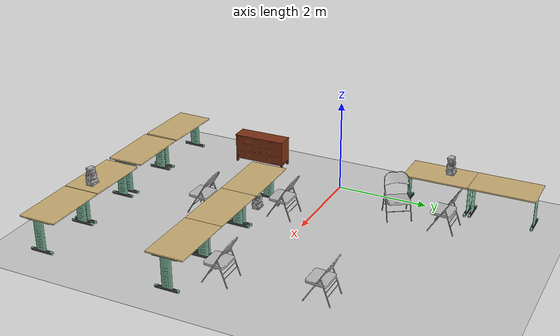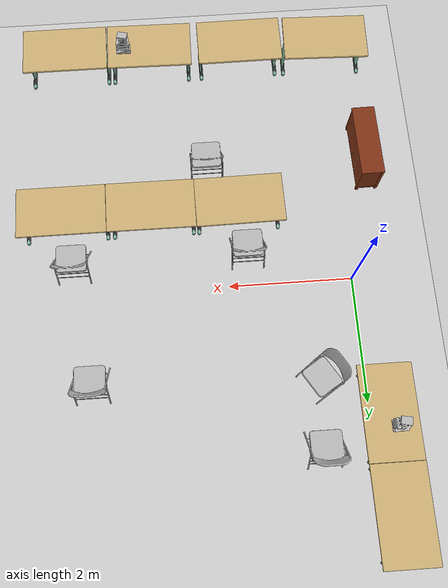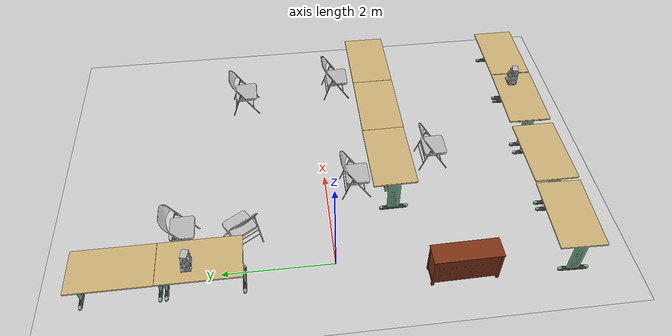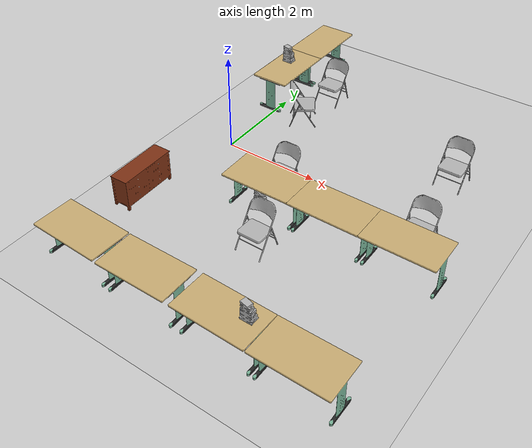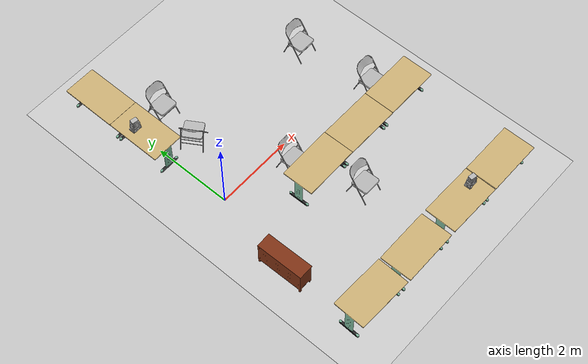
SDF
<sdf version="1.6">
 <world name="default">
  <light name="sun" type="directional">
   <pose>0 0 10 0 -0 0</pose>
   <diffuse>0.8 0.8 0.8 1</diffuse>
   <specular>0.2 0.2 0.2 1</specular>
   <attenuation>
    <range>1000</range>
    <constant>0.9</constant>
    <linear>0.01</linear>
    <quadratic>0.001</quadratic>
   </attenuation>
   <direction>-0.5 0.1 -0.9</direction>
  </light>
  <model name="ground_plane">
   <static>1</static>
   <link name="link">
    <collision name="collision">
     <geometry><plane><normal>0 0 1</normal><size>100 100</size></plane></geometry>
     <surface><friction><ode><mu>100</mu><mu2>50</mu2></ode></friction></surface>
    </collision>
    <visual name="visual">
     <cast_shadows>0</cast_shadows>
     <geometry><plane><normal>0 0 1</normal><size>100 100</size></plane></geometry>
     <material>
      <script><uri>file://media/materials/scripts/gazebo.material</uri><name>Gazebo/Grey</name></script>
     </material>
    </visual>
   </link>
  </model>
  <gravity>0 0 -9.8</gravity>
  <magnetic_field>6e-06 2.3e-05 -4.2e-05</magnetic_field>
  <atmosphere type="adiabatic"/>
  <physics name="default_physics" default="0" type="ode">
   <max_step_size>0.001</max_step_size>
   <real_time_factor>1</real_time_factor>
   <real_time_update_rate>1000</real_time_update_rate>
  </physics>
  <scene><ambient>0.4 0.4 0.4 1</ambient><background>0.7 0.7 0.7 1</background><shadows>1</shadows></scene>
  <spherical_coordinates>
   <surface_model>EARTH_WGS84</surface_model>
   <latitude_deg>0</latitude_deg>
   <longitude_deg>0</longitude_deg>
   <elevation>0</elevation>
   <heading_deg>0</heading_deg>
  </spherical_coordinates>
  <model name="desk_shared">
   <link name="link">
    <collision name="collision">
     <geometry><mesh><uri>model://desk_shared/meshes/model.dae</uri></mesh></geometry>
    </collision>
    <visual name="visual">
     <geometry><mesh><uri>model://desk_shared/meshes/model.dae</uri></mesh></geometry>
    </visual>
   </link>
   <static>1</static>
   <pose>4.4988 -4.154 0 0 0 -1.57097</pose>
  </model>
  <model name="desk_shared_0">
   <link name="link">
    <collision name="collision">
     <geometry><mesh><uri>model://desk_shared/meshes/model.dae</uri></mesh></geometry>
    </collision>
    <visual name="visual">
     <geometry><mesh><uri>model://desk_shared/meshes/model.dae</uri></mesh></geometry>
    </visual>
   </link>
   <static>1</static>
   <pose>3.06981 -4.14176 0 0 -0 1.55577</pose>
  </model>
  <model name="desk_shared_1">
   <link name="link">
    <collision name="collision">
     <geometry><mesh><uri>model://desk_shared/meshes/model.dae</uri></mesh></geometry>
    </collision>
    <visual name="visual">
     <geometry><mesh><uri>model://desk_shared/meshes/model.dae</uri></mesh></geometry>
    </visual>
   </link>
   <static>1</static>
   <pose>4.58443 -1.20839 0 0 -0 1.57203</pose>
  </model>
  <model name="desk_shared_2">
   <link name="link">
    <collision name="collision">
     <geometry><mesh><uri>model://desk_shared/meshes/model.dae</uri></mesh></geometry>
    </collision>
    <visual name="visual">
     <geometry><mesh><uri>model://desk_shared/meshes/model.dae</uri></mesh></geometry>
    </visual>
   </link>
   <static>1</static>
   <pose>0.070188 -4.10854 0 0 -0 1.5415</pose>
  </model>
  <model name="desk_shared_3">
   <link name="link">
    <collision name="collision">
     <geometry><mesh><uri>model://desk_shared/meshes/model.dae</uri></mesh></geometry>
    </collision>
    <visual name="visual">
     <geometry><mesh><uri>model://desk_shared/meshes/model.dae</uri></mesh></geometry>
    </visual>
   </link>
   <static>1</static>
   <pose>1.53758 -4.13545 0 0 -0 1.57626</pose>
  </model>
  <model name="desk_shared_4">
   <link name="link">
    <collision name="collision">
     <geometry><mesh><uri>model://desk_shared/meshes/model.dae</uri></mesh></geometry>
    </collision>
    <visual name="visual">
     <geometry><mesh><uri>model://desk_shared/meshes/model.dae</uri></mesh></geometry>
    </visual>
   </link>
   <static>1</static>
   <pose>3.17171 -1.20926 0 0 0 -1.57322</pose>
  </model>
  <model name="desk_shared_5">
   <link name="link">
    <collision name="collision">
     <geometry><mesh><uri>model://desk_shared/meshes/model.dae</uri></mesh></geometry>
    </collision>
    <visual name="visual">
     <geometry><mesh><uri>model://desk_shared/meshes/model.dae</uri></mesh></geometry>
    </visual>
   </link>
   <static>1</static>
   <pose>1.76291 -1.2109 0 0 -0 1.58376</pose>
  </model>
  <model name="drawer">
   <link name="link">
    <collision name="collision">
     <geometry><mesh><uri>model://drawer/meshes/model.dae</uri></mesh></geometry>
    </collision>
    <visual name="visual"><geometry><mesh><uri>model://drawer/meshes/model.dae</uri></mesh></geometry></visual>
   </link>
   <static>1</static>
   <pose>-0.437272 -2.16054 0 0 -0 1.58469</pose>
  </model>
  <model name="chair_foldable">
   <link name="link">
    <collision name="collision">
     <geometry><mesh><uri>model://chair_foldable/meshes/model.dae</uri></mesh></geometry>
    </collision>
    <visual name="visual">
     <geometry><mesh><uri>model://chair_foldable/meshes/model.dae</uri></mesh></geometry>
    </visual>
   </link>
   <static>1</static>
   <pose>2.22778 -2.16601 0 0 -0 0</pose>
  </model>
  <model name="chair_foldable_0">
   <link name="link">
    <collision name="collision">
     <geometry><mesh><uri>model://chair_foldable/meshes/model.dae</uri></mesh></geometry>
    </collision>
    <visual name="visual">
     <geometry><mesh><uri>model://chair_foldable/meshes/model.dae</uri></mesh></geometry>
    </visual>
   </link>
   <static>1</static>
   <pose>1.66765 -0.569471 0 0 -0 0</pose>
  </model>
  <model name="chair_foldable_1">
   <link name="link">
    <collision name="collision">
     <geometry><mesh><uri>model://chair_foldable/meshes/model.dae</uri></mesh></geometry>
    </collision>
    <visual name="visual">
     <geometry><mesh><uri>model://chair_foldable/meshes/model.dae</uri></mesh></geometry>
    </visual>
   </link>
   <static>1</static>
   <pose>4.48801 -0.492382 0 0 -0 0</pose>
  </model>
  <model name="chair_foldable_2">
   <link name="link">
    <collision name="collision">
     <geometry><mesh><uri>model://chair_foldable/meshes/model.dae</uri></mesh></geometry>
    </collision>
    <visual name="visual">
     <geometry><mesh><uri>model://chair_foldable/meshes/model.dae</uri></mesh></geometry>
    </visual>
   </link>
   <static>1</static>
   <pose>4.22809 1.46812 0 0 -0 0</pose>
  </model>
  <model name="chair_foldable_3">
   <link name="link">
    <collision name="collision">
     <geometry><mesh><uri>model://chair_foldable/meshes/model.dae</uri></mesh></geometry>
    </collision>
    <visual name="visual">
     <geometry><mesh><uri>model://chair_foldable/meshes/model.dae</uri></mesh></geometry>
    </visual>
   </link>
   <static>1</static>
   <pose>0.705562 1.60987 0 0 -0 2.12984</pose>
  </model>
  <model name="chair_foldable_4">
   <link name="link">
    <collision name="collision">
     <geometry><mesh><uri>model://chair_foldable/meshes/model.dae</uri></mesh></geometry>
    </collision>
    <visual name="visual">
     <geometry><mesh><uri>model://chair_foldable/meshes/model.dae</uri></mesh></geometry>
    </visual>
   </link>
   <static>1</static>
   <pose>0.774419 2.65346 0 0 -0 0</pose>
  </model>
  <model name="desk_shared_6">
   <link name="link">
    <collision name="collision">
     <geometry><mesh><uri>model://desk_shared/meshes/model.dae</uri></mesh></geometry>
    </collision>
    <visual name="visual">
     <geometry><mesh><uri>model://desk_shared/meshes/model.dae</uri></mesh></geometry>
    </visual>
   </link>
   <static>1</static>
   <pose>-0.146005 3.65586 0 0 -0 0</pose>
  </model>
  <model name="desk_shared_7">
   <link name="link">
    <collision name="collision">
     <geometry><mesh><uri>model://desk_shared/meshes/model.dae</uri></mesh></geometry>
    </collision>
    <visual name="visual">
     <geometry><mesh><uri>model://desk_shared/meshes/model.dae</uri></mesh></geometry>
    </visual>
   </link>
   <static>1</static>
   <pose>-0.142664 2.24326 0 0 -0 0</pose>
  </model>
  <model name="books">
   <link name="link">
    <collision name="collision">
     <geometry><mesh><uri>model://books/meshes/model.dae</uri></mesh></geometry>
    </collision>
    <visual name="visual"><geometry><mesh><uri>model://books/meshes/model.dae</uri></mesh></geometry></visual>
   </link>
   <static>1</static>
   <pose>3.4993 -4.0637 0.779143 0 -0 0</pose>
  </model>
  <model name="books_0">
   <link name="link">
    <collision name="collision">
     <geometry><mesh><uri>model://books/meshes/model.dae</uri></mesh></geometry>
    </collision>
    <visual name="visual"><geometry><mesh><uri>model://books/meshes/model.dae</uri></mesh></geometry></visual>
   </link>
   <static>1</static>
   <pose>1.6247 -1.20392 0 0 -0 0</pose>
  </model>
  <model name="books_1">
   <link name="link">
    <collision name="collision">
     <geometry><mesh><uri>model://books/meshes/model.dae</uri></mesh></geometry>
    </collision>
    <visual name="visual"><geometry><mesh><uri>model://books/meshes/model.dae</uri></mesh></geometry></visual>
   </link>
   <static>1</static>
   <pose>-0.25234 2.44692 0.762753 0 -0 0</pose>
  </model>
 </world>
</sdf>
